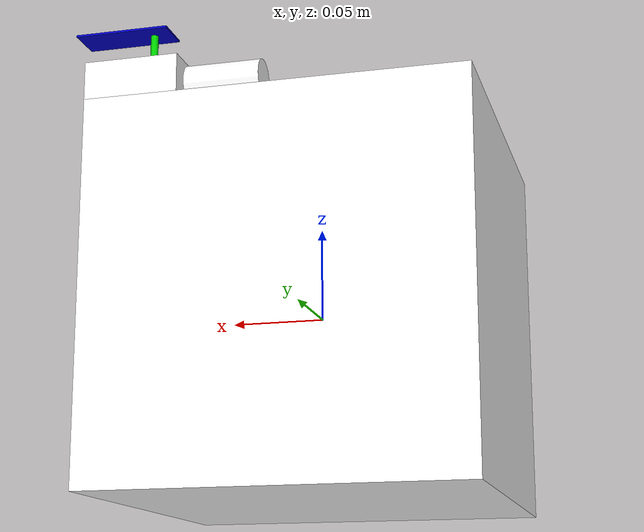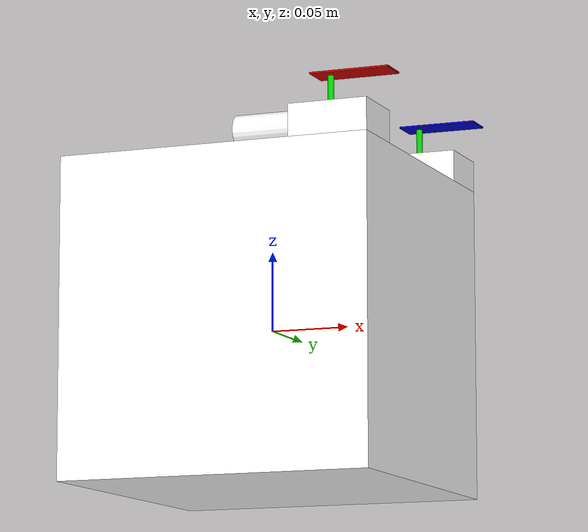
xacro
<?xml version="1.0"?>
<robot name="single_joint_actuator" xmlns:xacro="http://ros.org/wiki/xacro">
   <material name="blue">
	  <color rgba="0 0 0.8 1"/>
   </material>

   <material name="green">
      <color rgba="0.0 0.8 0.0 1.0"/>
   </material>

   <material name="red">
	<color rgba="0.8 0 0 1"/>
   </material>

   <material name="white">
	<color rgba="1 1 1 1"/>
   </material>

   <link name="world">
   </link>

   <joint name="base" type="fixed">
     <origin rpy="0 0 0" xyz="0 0 0"/>
     <parent link="world"/>
     <child link="base_support"/>
   </joint>

   <link name="base_support">
   <visual>
      <geometry>
         <box size="0.2 0.2 0.2"/>
      </geometry>
      <material name="white"/>
      <origin rpy="0 0 0" xyz="0.0 0.0 0.0"/>
    </visual>
   </link>

   <joint name="fixed_joint_base_to_motor_1" type="fixed">
     <origin rpy="0 0 0" xyz="0.03 0.08 0.1"/>
     <parent link="base_support"/>
     <child link="motor_1"/>
   </joint>

   <link name="motor_1">
   <visual>
      <geometry>
          <cylinder length="0.04" radius="0.01"/>
      </geometry>
      <material name="white"/>
      <origin rpy="0 1.5708 0" xyz="0.0 0.0 0.01"/>
    </visual>
   </link>

   <joint name="fixed_joint_1" type="fixed">
     <origin rpy="0 0 0" xyz="0.02 0 0.01"/>
     <parent link="motor_1"/>
     <child link="motor_gear_box_1"/>
   </joint>

   <link name="motor_gear_box_1">
   <visual>
      <geometry>
         <box size="0.05 0.04 0.02"/>
      </geometry>
      <material name="white"/>
      <origin rpy="0 0 0" xyz="0.025 0 0"/>
    </visual>
   </link>

   <joint name="joint1" type="revolute">
     <axis xyz="0 0 1"/>
     <limit effort="255.0" lower="-3.4" upper="3.4" velocity="0.5"/>
     <origin rpy="0 0 0" xyz="0.02 0 0.01"/>
     <parent link="motor_gear_box_1"/>
     <child link="shaft_1"/>
   </joint>

   <link name="shaft_1">
   <visual>
      <geometry>
         <cylinder length="0.02" radius="0.002"/>
      </geometry>
      <material name="green"/>
      <origin rpy="0 0 0" xyz="0 0 0.01"/>
    </visual>
   </link>

   <joint name="shaft_joint_1" type="fixed">
     <origin rpy="0 0 0" xyz="0.0 0 0.02"/>
     <parent link="shaft_1"/>
     <child link="shaft_bar_1"/>
   </joint>

   <link name="shaft_bar_1">
   <visual>
      <geometry>
         <box size="0.05 0.02 0.001"/>
      </geometry>
      <material name="blue"/>
      <origin rpy="0 0 0" xyz="0.015 0 0"/>
    </visual>
   </link>

   <joint name="fixed_joint_base_to_motor_2" type="fixed">
     <origin rpy="0 0 0" xyz="0.03 -0.08 0.1"/>
     <parent link="base_support"/>
     <child link="motor_2"/>
   </joint>

   <link name="motor_2">
   <visual>
      <geometry>
          <cylinder length="0.04" radius="0.01"/>
      </geometry>
      <material name="white"/>
      <origin rpy="0 1.5708 0" xyz="0.0 0.0 0.01"/>
    </visual>
   </link>

   <joint name="fixed_joint_2" type="fixed">
     <origin rpy="0 0 0" xyz="0.02 0 0.01"/>
     <parent link="motor_2"/>
     <child link="motor_gear_box_2"/>
   </joint>

  <link name="motor_gear_box_2">
   <visual>
      <geometry>
         <box size="0.05 0.04 0.02"/>
      </geometry>
      <material name="white"/>
      <origin rpy="0 0 0" xyz="0.025 0 0"/>
    </visual>
   </link>

   <joint name="joint2" type="revolute">
     <axis xyz="0 0 1"/>
     <limit effort="255.0" lower="-3.4" upper="3.4" velocity="0.5"/>
     <origin rpy="0 0 0" xyz="0.02 0 0.01"/>
     <parent link="motor_gear_box_2"/>
     <child link="shaft_2"/>
   </joint>

   <link name="shaft_2">
   <visual>
      <geometry>
         <cylinder length="0.02" radius="0.002"/>
      </geometry>
      <material name="green"/>
      <origin rpy="0 0 0" xyz="0 0 0.01"/>
    </visual>
   </link>

   <joint name="shaft_joint_2" type="fixed">
     <origin rpy="0 0 0" xyz="0.0 0 0.02"/>
     <parent link="shaft_2"/>
     <child link="shaft_bar_2"/>
   </joint>

   <link name="shaft_bar_2">
   <visual>
      <geometry>
         <box size="0.05 0.02 0.001"/>
      </geometry>
      <material name="red"/>
      <origin rpy="0 0 0" xyz="0.015 0 0"/>
    </visual>
   </link>
 </robot>
